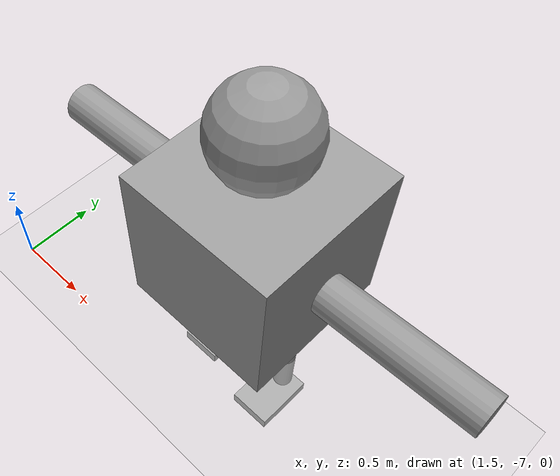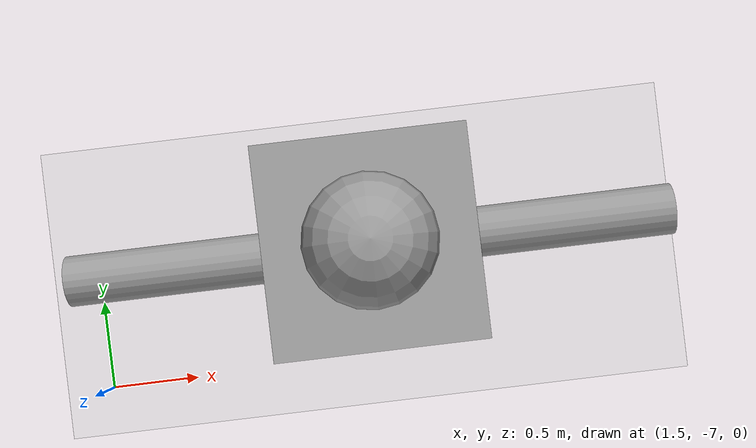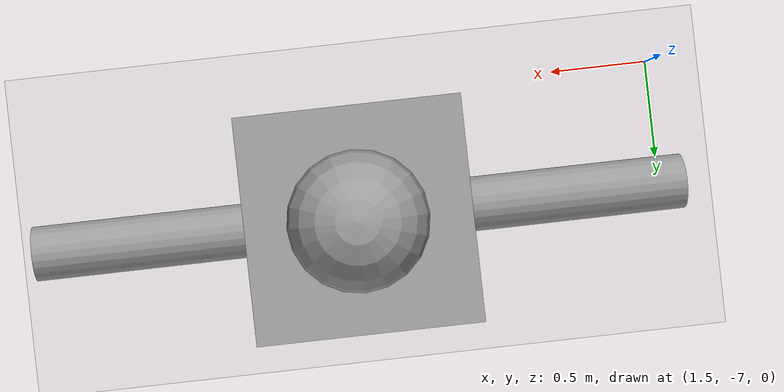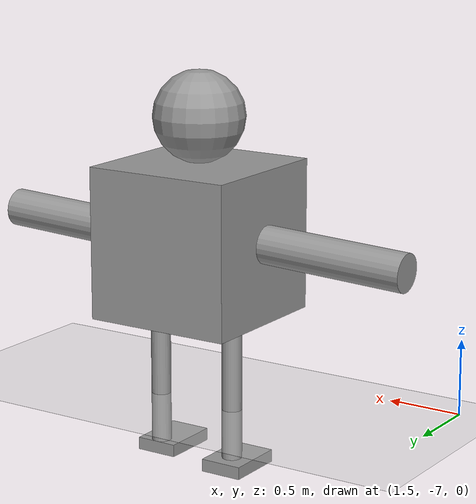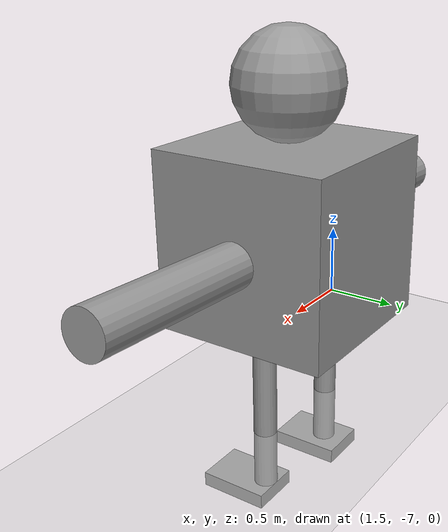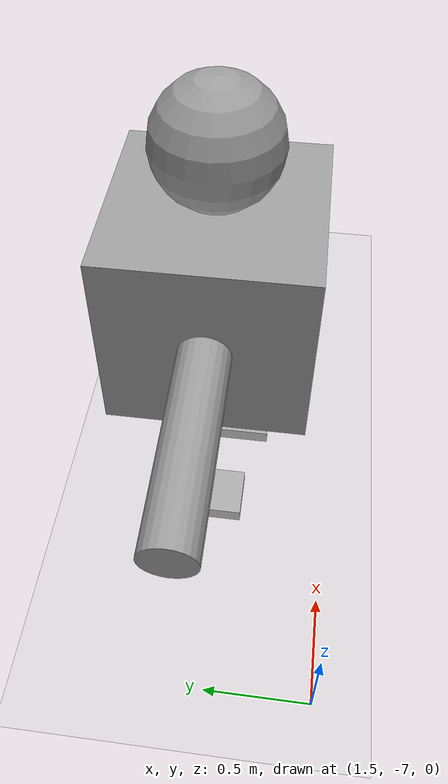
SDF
<sdf version="1.6">
 <world name="default">
  <model name="ground_plane">
   <static>1</static>
   <link name="link">
    <collision name="collision">
     <geometry><plane><normal>0 0 1</normal><size>100 100</size></plane></geometry>
     <surface><friction><ode><mu>100</mu><mu2>50</mu2></ode></friction></surface>
    </collision>
    <visual name="visual">
     <cast_shadows>0</cast_shadows>
     <geometry><plane><normal>0 0 1</normal><size>100 100</size></plane></geometry>
     <material>
      <script><uri>file://media/materials/scripts/gazebo.material</uri><name>Gazebo/Grey</name></script>
     </material>
    </visual>
   </link>
   <pose>-3.8747 13.4824 0 0 -0 0</pose>
  </model>
  <model name="first_model-edited">
   <link name="link_0">
    <pose>1.34948 -1.03796 -0.376734 0 -0 0</pose>
    <inertial>
     <mass>0.0094372</mass>
     <inertia>
      <ixx>0.00013078</ixx>
      <ixy>0</ixy>
      <ixz>0</ixz>
      <iyy>6.914e-05</iyy>
      <iyz>0</iyz>
      <izz>0.00018908</izz>
     </inertia>
    </inertial>
    <visual name="visual">
     <geometry><box><size>0.284636 0.399254 0.083044</size></box></geometry>
     <material>
      <lighting>1</lighting>
      <script><uri>file://media/materials/scripts/gazebo.material</uri><name>Gazebo/Grey</name></script>
      <shader type="pixel"><normal_map>__default__</normal_map></shader>
      <ambient>0.3 0.3 0.3 1</ambient>
      <diffuse>0.7 0.7 0.7 1</diffuse>
      <specular>0.01 0.01 0.01 1</specular>
      <emissive>0 0 0 1</emissive>
     </material>
    </visual>
    <collision name="collision">
     <geometry><box><size>0.284636 0.399254 0.083044</size></box></geometry>
     <surface>
      <friction>
       <ode><mu>1</mu><mu2>1</mu2><fdir1>0 0 0</fdir1><slip1>0</slip1><slip2>0</slip2></ode>
       <torsional>
        <coefficient>1</coefficient>
        <patch_radius>0</patch_radius>
        <surface_radius>0</surface_radius>
        <use_patch_radius>1</use_patch_radius>
        <ode><slip>0</slip></ode>
       </torsional>
      </friction>
      <bounce><restitution_coefficient>0</restitution_coefficient><threshold>1e+06</threshold></bounce>
      <contact>
       <collide_without_contact>0</collide_without_contact>
       <collide_without_contact_bitmask>1</collide_without_contact_bitmask>
       <collide_bitmask>1</collide_bitmask>
       <ode>
        <soft_cfm>0</soft_cfm>
        <soft_erp>0.2</soft_erp>
        <kp>1e+13</kp>
        <kd>1</kd>
        <max_vel>0.01</max_vel>
        <min_depth>0</min_depth>
       </ode>
       <bullet>
        <split_impulse>1</split_impulse>
        <split_impulse_penetration_threshold>-0.01</split_impulse_penetration_threshold>
        <soft_cfm>0</soft_cfm>
        <soft_erp>0.2</soft_erp>
        <kp>1e+13</kp>
        <kd>1</kd>
       </bullet>
      </contact>
     </surface>
    </collision>
   </link>
   <link name="link_0_clone">
    <pose>0.761524 -0.928795 -0.376734 0 -0 0</pose>
    <inertial>
     <mass>0.0094372</mass>
     <inertia>
      <ixx>0.00013078</ixx>
      <ixy>0</ixy>
      <ixz>0</ixz>
      <iyy>6.914e-05</iyy>
      <iyz>0</iyz>
      <izz>0.00018908</izz>
     </inertia>
    </inertial>
    <visual name="visual">
     <geometry><box><size>0.284636 0.399254 0.083044</size></box></geometry>
     <material>
      <lighting>1</lighting>
      <script><uri>file://media/materials/scripts/gazebo.material</uri><name>Gazebo/Grey</name></script>
      <shader type="pixel"><normal_map>__default__</normal_map></shader>
      <ambient>0.3 0.3 0.3 1</ambient>
      <diffuse>0.7 0.7 0.7 1</diffuse>
      <specular>0.01 0.01 0.01 1</specular>
      <emissive>0 0 0 1</emissive>
     </material>
    </visual>
    <collision name="collision">
     <geometry><box><size>0.284636 0.399254 0.083044</size></box></geometry>
     <surface>
      <friction>
       <ode><mu>1</mu><mu2>1</mu2><fdir1>0 0 0</fdir1><slip1>0</slip1><slip2>0</slip2></ode>
       <torsional>
        <coefficient>1</coefficient>
        <patch_radius>0</patch_radius>
        <surface_radius>0</surface_radius>
        <use_patch_radius>1</use_patch_radius>
        <ode><slip>0</slip></ode>
       </torsional>
      </friction>
      <bounce><restitution_coefficient>0</restitution_coefficient><threshold>1e+06</threshold></bounce>
      <contact>
       <collide_without_contact>0</collide_without_contact>
       <collide_without_contact_bitmask>1</collide_without_contact_bitmask>
       <collide_bitmask>1</collide_bitmask>
       <ode>
        <soft_cfm>0</soft_cfm>
        <soft_erp>0.2</soft_erp>
        <kp>1e+13</kp>
        <kd>1</kd>
        <max_vel>0.01</max_vel>
        <min_depth>0</min_depth>
       </ode>
       <bullet>
        <split_impulse>1</split_impulse>
        <split_impulse_penetration_threshold>-0.01</split_impulse_penetration_threshold>
        <soft_cfm>0</soft_cfm>
        <soft_erp>0.2</soft_erp>
        <kp>1e+13</kp>
        <kd>1</kd>
       </bullet>
      </contact>
     </surface>
    </collision>
   </link>
   <link name="link_1">
    <pose>0.763842 -0.869168 0.081744 0 -0 0</pose>
    <inertial>
     <mass>0.0171814</mass>
     <inertia>
      <ixx>0.00145024</ixx>
      <ixy>0</ixy>
      <ixz>0</ixz>
      <iyy>0.00145024</iyy>
      <iyz>0</iyz>
      <izz>3.69e-05</izz>
     </inertia>
    </inertial>
    <visual name="visual">
     <geometry><cylinder><radius>0.0655402</radius><length>1</length></cylinder></geometry>
     <material>
      <lighting>1</lighting>
      <script><uri>file://media/materials/scripts/gazebo.material</uri><name>Gazebo/Grey</name></script>
      <shader type="pixel"><normal_map>__default__</normal_map></shader>
      <ambient>0.3 0.3 0.3 1</ambient>
      <diffuse>0.7 0.7 0.7 1</diffuse>
      <specular>0.01 0.01 0.01 1</specular>
      <emissive>0 0 0 1</emissive>
     </material>
    </visual>
    <collision name="collision">
     <geometry><cylinder><radius>0.06554</radius><length>1</length></cylinder></geometry>
     <surface>
      <friction>
       <ode><mu>1</mu><mu2>1</mu2><fdir1>0 0 0</fdir1><slip1>0</slip1><slip2>0</slip2></ode>
       <torsional>
        <coefficient>1</coefficient>
        <patch_radius>0</patch_radius>
        <surface_radius>0</surface_radius>
        <use_patch_radius>1</use_patch_radius>
        <ode><slip>0</slip></ode>
       </torsional>
      </friction>
      <bounce><restitution_coefficient>0</restitution_coefficient><threshold>1e+06</threshold></bounce>
      <contact>
       <collide_without_contact>0</collide_without_contact>
       <collide_without_contact_bitmask>1</collide_without_contact_bitmask>
       <collide_bitmask>1</collide_bitmask>
       <ode>
        <soft_cfm>0</soft_cfm>
        <soft_erp>0.2</soft_erp>
        <kp>1e+13</kp>
        <kd>1</kd>
        <max_vel>0.01</max_vel>
        <min_depth>0</min_depth>
       </ode>
       <bullet>
        <split_impulse>1</split_impulse>
        <split_impulse_penetration_threshold>-0.01</split_impulse_penetration_threshold>
        <soft_cfm>0</soft_cfm>
        <soft_erp>0.2</soft_erp>
        <kp>1e+13</kp>
        <kd>1</kd>
       </bullet>
      </contact>
     </surface>
    </collision>
   </link>
   <link name="link_1_clone">
    <pose>1.34948 -0.903875 0.081744 0 -0 0</pose>
    <inertial>
     <mass>0.0171814</mass>
     <inertia>
      <ixx>0.00145024</ixx>
      <ixy>0</ixy>
      <ixz>0</ixz>
      <iyy>0.00145024</iyy>
      <iyz>0</iyz>
      <izz>3.69e-05</izz>
     </inertia>
    </inertial>
    <visual name="visual">
     <geometry><cylinder><radius>0.0655402</radius><length>1</length></cylinder></geometry>
     <material>
      <lighting>1</lighting>
      <script><uri>file://media/materials/scripts/gazebo.material</uri><name>Gazebo/Grey</name></script>
      <shader type="pixel"><normal_map>__default__</normal_map></shader>
      <ambient>0.3 0.3 0.3 1</ambient>
      <diffuse>0.7 0.7 0.7 1</diffuse>
      <specular>0.01 0.01 0.01 1</specular>
      <emissive>0 0 0 1</emissive>
     </material>
    </visual>
    <collision name="collision">
     <geometry><cylinder><radius>0.06554</radius><length>1</length></cylinder></geometry>
     <surface>
      <friction>
       <ode><mu>1</mu><mu2>1</mu2><fdir1>0 0 0</fdir1><slip1>0</slip1><slip2>0</slip2></ode>
       <torsional>
        <coefficient>1</coefficient>
        <patch_radius>0</patch_radius>
        <surface_radius>0</surface_radius>
        <use_patch_radius>1</use_patch_radius>
        <ode><slip>0</slip></ode>
       </torsional>
      </friction>
      <bounce><restitution_coefficient>0</restitution_coefficient><threshold>1e+06</threshold></bounce>
      <contact>
       <collide_without_contact>0</collide_without_contact>
       <collide_without_contact_bitmask>1</collide_without_contact_bitmask>
       <collide_bitmask>1</collide_bitmask>
       <ode>
        <soft_cfm>0</soft_cfm>
        <soft_erp>0.2</soft_erp>
        <kp>1e+13</kp>
        <kd>1</kd>
        <max_vel>0.01</max_vel>
        <min_depth>0</min_depth>
       </ode>
       <bullet>
        <split_impulse>1</split_impulse>
        <split_impulse_penetration_threshold>-0.01</split_impulse_penetration_threshold>
        <soft_cfm>0</soft_cfm>
        <soft_erp>0.2</soft_erp>
        <kp>1e+13</kp>
        <kd>1</kd>
       </bullet>
      </contact>
     </surface>
    </collision>
   </link>
   <link name="link_3">
    <pose>1.05896 -0.938686 1.08174 0 -0 0</pose>
    <inertial>
     <mass>1</mass>
     <inertia>
      <ixx>0.166667</ixx>
      <ixy>0</ixy>
      <ixz>0</ixz>
      <iyy>0.166667</iyy>
      <iyz>0</iyz>
      <izz>0.166667</izz>
     </inertia>
    </inertial>
    <visual name="visual">
     <geometry><box><size>1 1 1</size></box></geometry>
     <material>
      <lighting>1</lighting>
      <script><uri>file://media/materials/scripts/gazebo.material</uri><name>Gazebo/Grey</name></script>
      <shader type="pixel"><normal_map>__default__</normal_map></shader>
      <ambient>0.3 0.3 0.3 1</ambient>
      <diffuse>0.7 0.7 0.7 1</diffuse>
      <specular>0.01 0.01 0.01 1</specular>
      <emissive>0 0 0 1</emissive>
     </material>
    </visual>
    <collision name="collision">
     <geometry><box><size>1 1 1</size></box></geometry>
     <surface>
      <friction>
       <ode><mu>1</mu><mu2>1</mu2><fdir1>0 0 0</fdir1><slip1>0</slip1><slip2>0</slip2></ode>
       <torsional>
        <coefficient>1</coefficient>
        <patch_radius>0</patch_radius>
        <surface_radius>0</surface_radius>
        <use_patch_radius>1</use_patch_radius>
        <ode><slip>0</slip></ode>
       </torsional>
      </friction>
      <bounce><restitution_coefficient>0</restitution_coefficient><threshold>1e+06</threshold></bounce>
      <contact>
       <collide_without_contact>0</collide_without_contact>
       <collide_without_contact_bitmask>1</collide_without_contact_bitmask>
       <collide_bitmask>1</collide_bitmask>
       <ode>
        <soft_cfm>0</soft_cfm>
        <soft_erp>0.2</soft_erp>
        <kp>1e+13</kp>
        <kd>1</kd>
        <max_vel>0.01</max_vel>
        <min_depth>0</min_depth>
       </ode>
       <bullet>
        <split_impulse>1</split_impulse>
        <split_impulse_penetration_threshold>-0.01</split_impulse_penetration_threshold>
        <soft_cfm>0</soft_cfm>
        <soft_erp>0.2</soft_erp>
        <kp>1e+13</kp>
        <kd>1</kd>
       </bullet>
      </contact>
     </surface>
    </collision>
   </link>
   <link name="link_4">
    <pose>1.05896 -0.938686 1.88247 0 -0 0</pose>
    <inertial>
     <mass>0.217579</mass>
     <inertia>
      <ixx>0.00787095</ixx>
      <ixy>0</ixy>
      <ixz>0</ixz>
      <iyy>0.00787095</iyy>
      <iyz>0</iyz>
      <izz>0.00787095</izz>
     </inertia>
    </inertial>
    <visual name="visual">
     <geometry><sphere><radius>0.300729</radius></sphere></geometry>
     <material>
      <lighting>1</lighting>
      <script><uri>file://media/materials/scripts/gazebo.material</uri><name>Gazebo/Grey</name></script>
      <shader type="pixel"><normal_map>__default__</normal_map></shader>
      <ambient>0.3 0.3 0.3 1</ambient>
      <diffuse>0.7 0.7 0.7 1</diffuse>
      <specular>0.01 0.01 0.01 1</specular>
      <emissive>0 0 0 1</emissive>
     </material>
    </visual>
    <collision name="collision">
     <geometry><sphere><radius>0.300729</radius></sphere></geometry>
     <surface>
      <friction>
       <ode><mu>1</mu><mu2>1</mu2><fdir1>0 0 0</fdir1><slip1>0</slip1><slip2>0</slip2></ode>
       <torsional>
        <coefficient>1</coefficient>
        <patch_radius>0</patch_radius>
        <surface_radius>0</surface_radius>
        <use_patch_radius>1</use_patch_radius>
        <ode><slip>0</slip></ode>
       </torsional>
      </friction>
      <bounce><restitution_coefficient>0</restitution_coefficient><threshold>1e+06</threshold></bounce>
      <contact>
       <collide_without_contact>0</collide_without_contact>
       <collide_without_contact_bitmask>1</collide_without_contact_bitmask>
       <collide_bitmask>1</collide_bitmask>
       <ode>
        <soft_cfm>0</soft_cfm>
        <soft_erp>0.2</soft_erp>
        <kp>1e+13</kp>
        <kd>1</kd>
        <max_vel>0.01</max_vel>
        <min_depth>0</min_depth>
       </ode>
       <bullet>
        <split_impulse>1</split_impulse>
        <split_impulse_penetration_threshold>-0.01</split_impulse_penetration_threshold>
        <soft_cfm>0</soft_cfm>
        <soft_erp>0.2</soft_erp>
        <kp>1e+13</kp>
        <kd>1</kd>
       </bullet>
      </contact>
     </surface>
    </collision>
   </link>
   <link name="link_6">
    <pose>0.053462 -0.945873 1.08892 0 1.52826 0</pose>
    <inertial>
     <mass>0.0631262</mass>
     <inertia>
      <ixx>0.00550958</ixx>
      <ixy>0</ixy>
      <ixz>0</ixz>
      <iyy>0.00550958</iyy>
      <iyz>0</iyz>
      <izz>0.00049812</izz>
     </inertia>
    </inertial>
    <visual name="visual">
     <geometry><cylinder><radius>0.125625</radius><length>1</length></cylinder></geometry>
     <material>
      <lighting>1</lighting>
      <script><uri>file://media/materials/scripts/gazebo.material</uri><name>Gazebo/Grey</name></script>
      <shader type="pixel"><normal_map>__default__</normal_map></shader>
      <ambient>0.3 0.3 0.3 1</ambient>
      <diffuse>0.7 0.7 0.7 1</diffuse>
      <specular>0.01 0.01 0.01 1</specular>
      <emissive>0 0 0 1</emissive>
     </material>
    </visual>
    <collision name="collision">
     <geometry><cylinder><radius>0.125625</radius><length>1</length></cylinder></geometry>
     <surface>
      <friction>
       <ode><mu>1</mu><mu2>1</mu2><fdir1>0 0 0</fdir1><slip1>0</slip1><slip2>0</slip2></ode>
       <torsional>
        <coefficient>1</coefficient>
        <patch_radius>0</patch_radius>
        <surface_radius>0</surface_radius>
        <use_patch_radius>1</use_patch_radius>
        <ode><slip>0</slip></ode>
       </torsional>
      </friction>
      <bounce><restitution_coefficient>0</restitution_coefficient><threshold>1e+06</threshold></bounce>
      <contact>
       <collide_without_contact>0</collide_without_contact>
       <collide_without_contact_bitmask>1</collide_without_contact_bitmask>
       <collide_bitmask>1</collide_bitmask>
       <ode>
        <soft_cfm>0</soft_cfm>
        <soft_erp>0.2</soft_erp>
        <kp>1e+13</kp>
        <kd>1</kd>
        <max_vel>0.01</max_vel>
        <min_depth>0</min_depth>
       </ode>
       <bullet>
        <split_impulse>1</split_impulse>
        <split_impulse_penetration_threshold>-0.01</split_impulse_penetration_threshold>
        <soft_cfm>0</soft_cfm>
        <soft_erp>0.2</soft_erp>
        <kp>1e+13</kp>
        <kd>1</kd>
       </bullet>
      </contact>
     </surface>
    </collision>
   </link>
   <link name="link_6_clone">
    <pose>2.06385 -0.938686 1.08174 0 1.52826 0</pose>
    <inertial>
     <mass>0.0631262</mass>
     <inertia>
      <ixx>0.00550958</ixx>
      <ixy>0</ixy>
      <ixz>0</ixz>
      <iyy>0.00550958</iyy>
      <iyz>0</iyz>
      <izz>0.00049812</izz>
     </inertia>
    </inertial>
    <visual name="visual">
     <geometry><cylinder><radius>0.125625</radius><length>1</length></cylinder></geometry>
     <material>
      <lighting>1</lighting>
      <script><uri>file://media/materials/scripts/gazebo.material</uri><name>Gazebo/Grey</name></script>
      <shader type="pixel"><normal_map>__default__</normal_map></shader>
      <ambient>0.3 0.3 0.3 1</ambient>
      <diffuse>0.7 0.7 0.7 1</diffuse>
      <specular>0.01 0.01 0.01 1</specular>
      <emissive>0 0 0 1</emissive>
     </material>
    </visual>
    <collision name="collision">
     <geometry><cylinder><radius>0.125625</radius><length>1</length></cylinder></geometry>
     <surface>
      <friction>
       <ode><mu>1</mu><mu2>1</mu2><fdir1>0 0 0</fdir1><slip1>0</slip1><slip2>0</slip2></ode>
       <torsional>
        <coefficient>1</coefficient>
        <patch_radius>0</patch_radius>
        <surface_radius>0</surface_radius>
        <use_patch_radius>1</use_patch_radius>
        <ode><slip>0</slip></ode>
       </torsional>
      </friction>
      <bounce><restitution_coefficient>0</restitution_coefficient><threshold>1e+06</threshold></bounce>
      <contact>
       <collide_without_contact>0</collide_without_contact>
       <collide_without_contact_bitmask>1</collide_without_contact_bitmask>
       <collide_bitmask>1</collide_bitmask>
       <ode>
        <soft_cfm>0</soft_cfm>
        <soft_erp>0.2</soft_erp>
        <kp>1e+13</kp>
        <kd>1</kd>
        <max_vel>0.01</max_vel>
        <min_depth>0</min_depth>
       </ode>
       <bullet>
        <split_impulse>1</split_impulse>
        <split_impulse_penetration_threshold>-0.01</split_impulse_penetration_threshold>
        <soft_cfm>0</soft_cfm>
        <soft_erp>0.2</soft_erp>
        <kp>1e+13</kp>
        <kd>1</kd>
       </bullet>
      </contact>
     </surface>
    </collision>
   </link>
   <joint name="link_1_JOINT_1" type="fixed">
    <parent>link_1</parent>
    <child>link_0_clone</child>
    <physics>
     <ode><limit><cfm>0</cfm><erp>0.2</erp></limit><suspension><cfm>0</cfm><erp>0.2</erp></suspension></ode>
    </physics>
   </joint>
   <joint name="link_1_clone_JOINT_0" type="fixed">
    <parent>link_0_clone</parent>
    <child>link_0</child>
    <physics>
     <ode><limit><cfm>0</cfm><erp>0.2</erp></limit><suspension><cfm>0</cfm><erp>0.2</erp></suspension></ode>
    </physics>
   </joint>
   <joint name="link_1_clone_JOINT_3" type="fixed">
    <parent>link_1_clone</parent>
    <child>link_0</child>
    <physics>
     <ode><limit><cfm>0</cfm><erp>0.2</erp></limit><suspension><cfm>0</cfm><erp>0.2</erp></suspension></ode>
    </physics>
   </joint>
   <joint name="link_3_JOINT_6" type="fixed">
    <parent>link_3</parent>
    <child>link_1_clone</child>
    <physics>
     <ode><limit><cfm>0</cfm><erp>0.2</erp></limit><suspension><cfm>0</cfm><erp>0.2</erp></suspension></ode>
    </physics>
   </joint>
   <joint name="link_3_JOINT_7" type="fixed">
    <parent>link_3</parent>
    <child>link_1</child>
    <physics>
     <ode><limit><cfm>0</cfm><erp>0.2</erp></limit><suspension><cfm>0</cfm><erp>0.2</erp></suspension></ode>
    </physics>
   </joint>
   <joint name="link_4_JOINT_8" type="fixed">
    <parent>link_4</parent>
    <child>link_3</child>
    <physics>
     <ode><limit><cfm>0</cfm><erp>0.2</erp></limit><suspension><cfm>0</cfm><erp>0.2</erp></suspension></ode>
    </physics>
   </joint>
   <joint name="link_6_JOINT_11" type="fixed">
    <parent>link_6</parent>
    <child>link_3</child>
    <physics>
     <ode><limit><cfm>0</cfm><erp>0.2</erp></limit><suspension><cfm>0</cfm><erp>0.2</erp></suspension></ode>
    </physics>
   </joint>
   <joint name="link_6_clone_JOINT_12" type="fixed">
    <parent>link_6_clone</parent>
    <child>link_3</child>
    <physics>
     <ode><limit><cfm>0</cfm><erp>0.2</erp></limit><suspension><cfm>0</cfm><erp>0.2</erp></suspension></ode>
    </physics>
   </joint>
   <static>1</static>
   <pose>2.02187 -5.42713 0 0 -0 0</pose>
  </model>
 </world>
</sdf>
